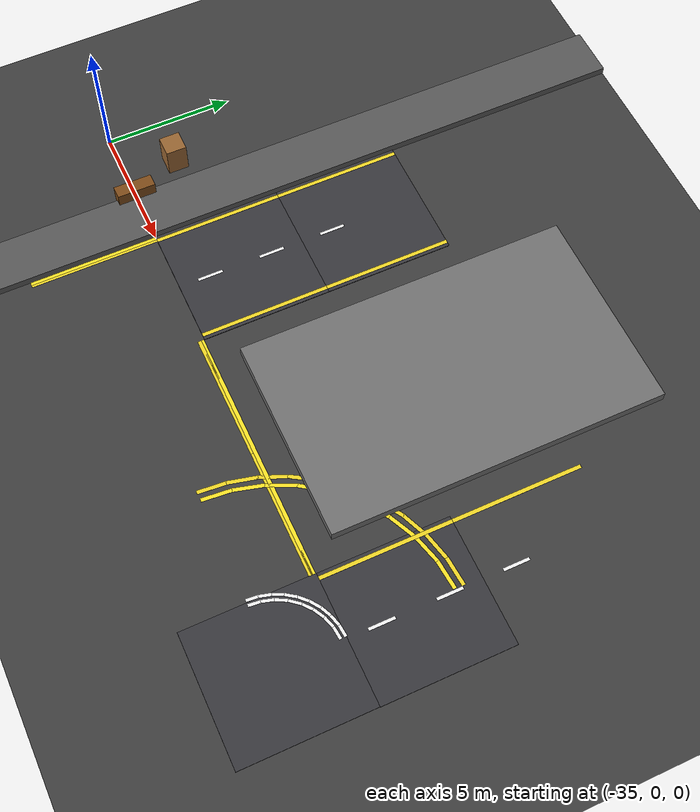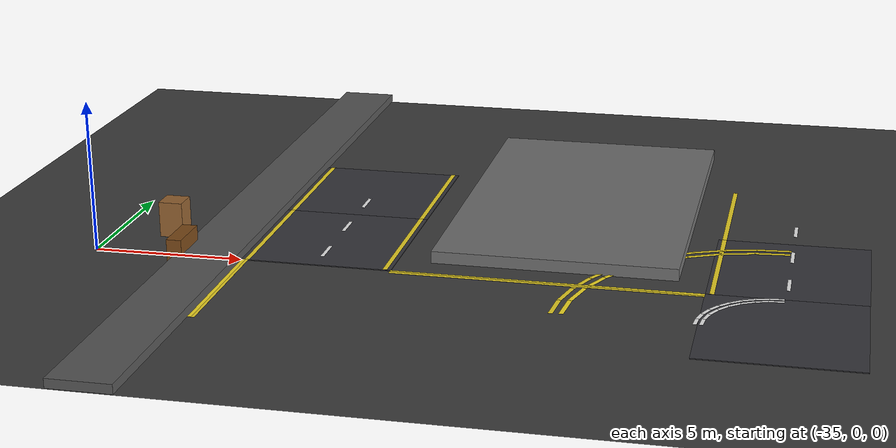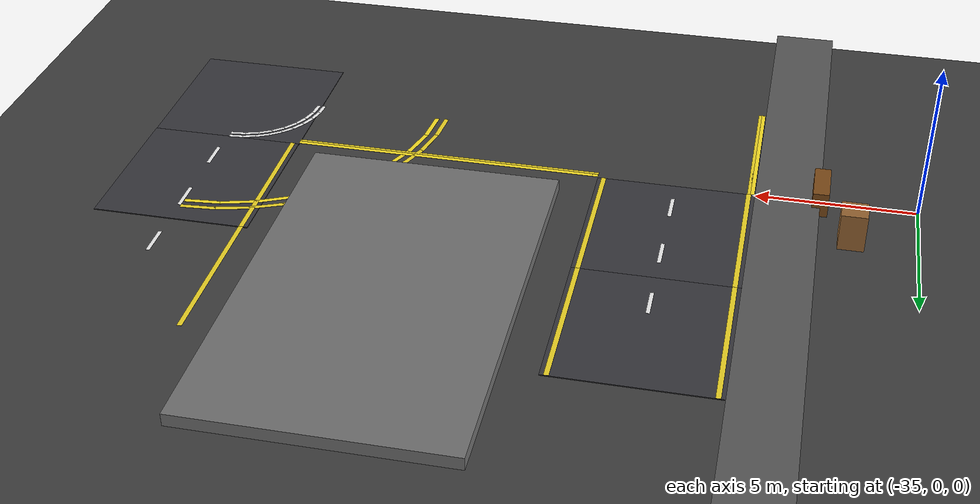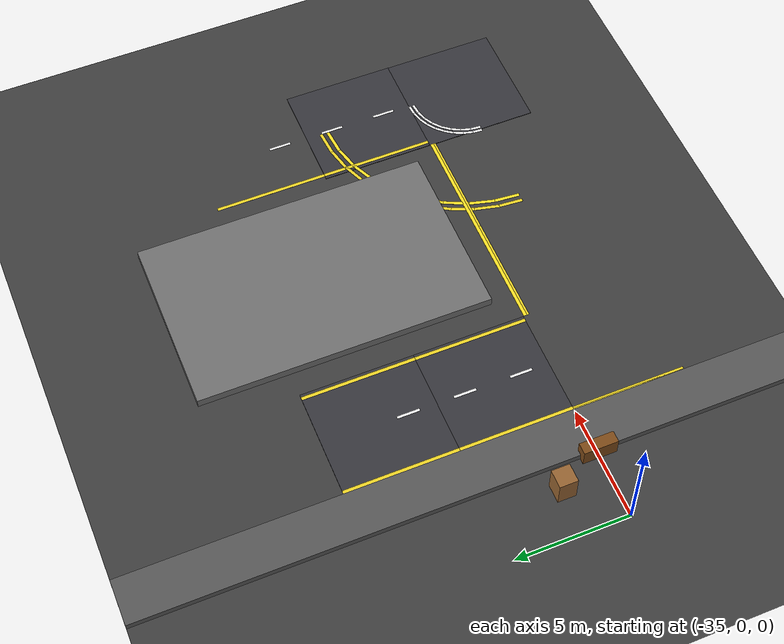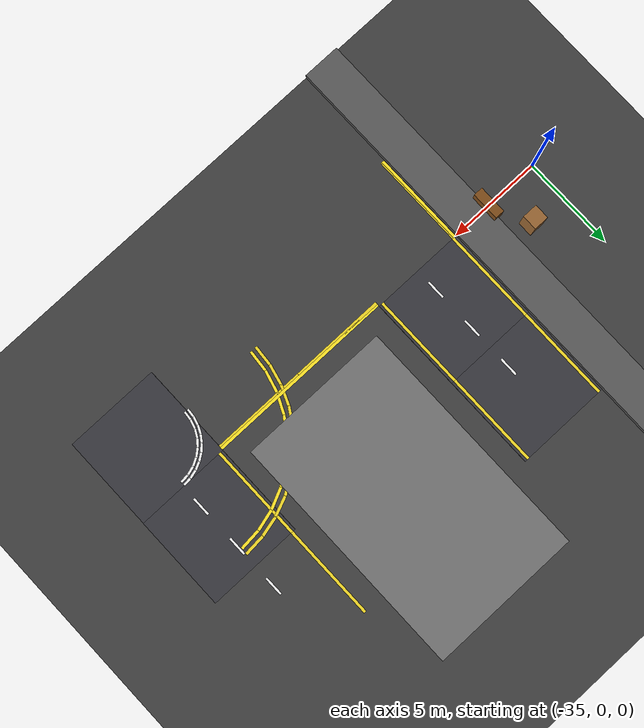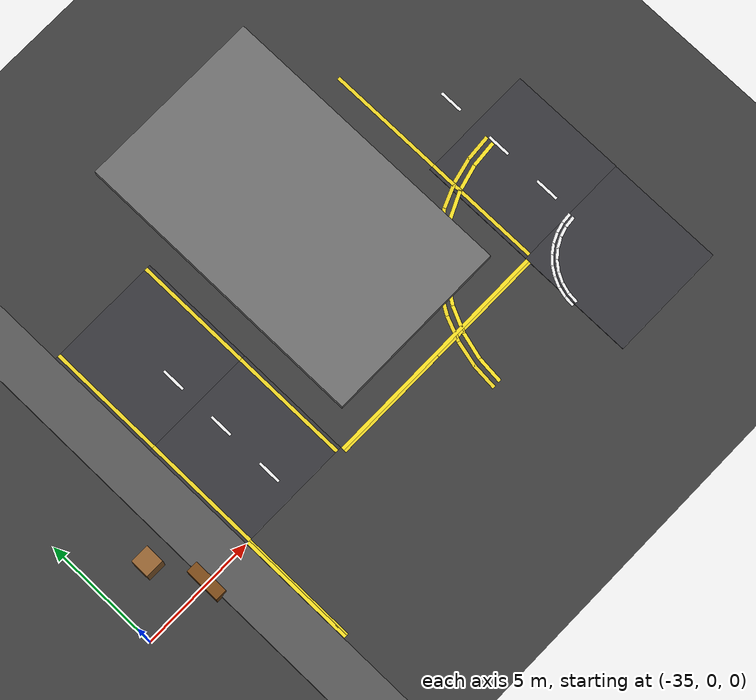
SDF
<sdf version="1.7">
 <world name="compact_city">
  <model name="ground_plane">
   <static>1</static>
   <pose>0 0 0.01 0 -0 0</pose>
   <link name="link">
    <collision name="collision">
     <geometry><plane><normal>0 0 1</normal><size>200 200</size></plane></geometry>
    </collision>
    <visual name="visual">
     <geometry><plane><normal>0 0 1</normal><size>200 200</size></plane></geometry>
     <material>
      <ambient>0.2 0.2 0.2 1</ambient>
      <diffuse>0.25 0.25 0.25 1</diffuse>
      <specular>0.1 0.1 0.1 1</specular>
     </material>
    </visual>
   </link>
  </model>
  <model name="road_tile_37">
   <static>1</static>
   <pose>-27.5 7.5 0.015 0 -0 1.5708</pose>
   <link name="link">
    <collision name="collision"><geometry><box><size>5 5 0.03</size></box></geometry></collision>
    <visual name="visual">
     <geometry><box><size>5 5 0.03</size></box></geometry>
     <material>
      <ambient>0.18 0.18 0.2 1</ambient>
      <diffuse>0.22 0.22 0.24 1</diffuse>
      <specular>0.1 0.1 0.1 1</specular>
     </material>
    </visual>
   </link>
  </model>
  <model name="road_tile_41">
   <static>1</static>
   <pose>-27.5 2.5 0.015 0 -0 1.5708</pose>
   <link name="link">
    <collision name="collision"><geometry><box><size>5 5 0.03</size></box></geometry></collision>
    <visual name="visual">
     <geometry><box><size>5 5 0.03</size></box></geometry>
     <material>
      <ambient>0.18 0.18 0.2 1</ambient>
      <diffuse>0.22 0.22 0.24 1</diffuse>
      <specular>0.1 0.1 0.1 1</specular>
     </material>
    </visual>
   </link>
  </model>
  <model name="road_tile_42">
   <static>1</static>
   <pose>-12.5 2.5 0.015 0 -0 1.5708</pose>
   <link name="link">
    <collision name="collision"><geometry><box><size>5 5 0.03</size></box></geometry></collision>
    <visual name="visual">
     <geometry><box><size>5 5 0.03</size></box></geometry>
     <material>
      <ambient>0.18 0.18 0.2 1</ambient>
      <diffuse>0.22 0.22 0.24 1</diffuse>
      <specular>0.1 0.1 0.1 1</specular>
     </material>
    </visual>
   </link>
  </model>
  <model name="sidewalk_west">
   <static>1</static>
   <pose>-31 0 0.15 0 -0 0</pose>
   <link name="link">
    <collision name="collision"><geometry><box><size>2 70 0.3</size></box></geometry></collision>
    <visual name="visual">
     <geometry><box><size>2 70 0.3</size></box></geometry>
     <material>
      <ambient>0.3 0.3 0.3 1</ambient>
      <diffuse>0.35 0.35 0.35 1</diffuse>
      <specular>0.1 0.1 0.1 1</specular>
     </material>
    </visual>
   </link>
  </model>
  <model name="sidewalk_area_mid_left">
   <static>1</static>
   <pose>-19.9112 7.47491 0.2 0 -0 0</pose>
   <link name="link">
    <collision name="collision"><geometry><box><size>8 13 0.4</size></box></geometry></collision>
    <visual name="visual">
     <geometry><box><size>8 13 0.4</size></box></geometry>
     <material>
      <ambient>0.4 0.4 0.4 1</ambient>
      <diffuse>0.45 0.45 0.45 1</diffuse>
      <specular>0.2 0.2 0.2 1</specular>
     </material>
    </visual>
   </link>
  </model>
  <model name="el_137">
   <static>1</static>
   <pose>-29.8 2.5 0.038 0 -0 1.5708</pose>
   <link name="link">
    <visual name="v">
     <geometry><box><size>5 0.15 0.002</size></box></geometry>
     <material><ambient>0.9 0.8 0.1 1</ambient><diffuse>0.95 0.85 0.15 1</diffuse></material>
    </visual>
   </link>
  </model>
  <model name="el_138">
   <static>1</static>
   <pose>-25.2 2.5 0.038 0 -0 1.5708</pose>
   <link name="link">
    <visual name="v">
     <geometry><box><size>5 0.15 0.002</size></box></geometry>
     <material><ambient>0.9 0.8 0.1 1</ambient><diffuse>0.95 0.85 0.15 1</diffuse></material>
    </visual>
   </link>
  </model>
  <model name="el_139">
   <static>1</static>
   <pose>-29.8 7.5 0.038 0 -0 1.5708</pose>
   <link name="link">
    <visual name="v">
     <geometry><box><size>5 0.15 0.002</size></box></geometry>
     <material><ambient>0.9 0.8 0.1 1</ambient><diffuse>0.95 0.85 0.15 1</diffuse></material>
    </visual>
   </link>
  </model>
  <model name="el_140">
   <static>1</static>
   <pose>-25.2 7.5 0.038 0 -0 1.5708</pose>
   <link name="link">
    <visual name="v">
     <geometry><box><size>5 0.15 0.002</size></box></geometry>
     <material><ambient>0.9 0.8 0.1 1</ambient><diffuse>0.95 0.85 0.15 1</diffuse></material>
    </visual>
   </link>
  </model>
  <model name="el_150">
   <static>1</static>
   <pose>-22.5 -0.2 0.038 0 -0 0</pose>
   <link name="link">
    <visual name="v">
     <geometry><box><size>5 0.15 0.002</size></box></geometry>
     <material><ambient>0.9 0.8 0.1 1</ambient><diffuse>0.95 0.85 0.15 1</diffuse></material>
    </visual>
   </link>
  </model>
  <model name="el_158">
   <static>1</static>
   <pose>-17.5 -0.2 0.038 0 -0 0</pose>
   <link name="link">
    <visual name="v">
     <geometry><box><size>5 0.15 0.002</size></box></geometry>
     <material><ambient>0.9 0.8 0.1 1</ambient><diffuse>0.95 0.85 0.15 1</diffuse></material>
    </visual>
   </link>
  </model>
  <model name="el_169">
   <static>1</static>
   <pose>-14.8 2.5 0.038 0 -0 1.5708</pose>
   <link name="link">
    <visual name="v">
     <geometry><box><size>5 0.15 0.002</size></box></geometry>
     <material><ambient>0.9 0.8 0.1 1</ambient><diffuse>0.95 0.85 0.15 1</diffuse></material>
    </visual>
   </link>
  </model>
  <model name="el_171">
   <static>1</static>
   <pose>-14.8 7.5 0.038 0 -0 1.5708</pose>
   <link name="link">
    <visual name="v">
     <geometry><box><size>5 0.15 0.002</size></box></geometry>
     <material><ambient>0.9 0.8 0.1 1</ambient><diffuse>0.95 0.85 0.15 1</diffuse></material>
    </visual>
   </link>
  </model>
  <model name="ld_7">
   <static>1</static>
   <pose>-27.5000 1.2500 0.038 0 -0 1.5708</pose>
   <link name="link">
    <visual name="v">
     <geometry><box><size>1 0.12 0.002</size></box></geometry>
     <material><ambient>1 1 1 1</ambient><diffuse>0.95 0.95 0.95 1</diffuse></material>
    </visual>
   </link>
  </model>
  <model name="ld_8">
   <static>1</static>
   <pose>-27.5000 3.7500 0.038 0 -0 1.5708</pose>
   <link name="link">
    <visual name="v">
     <geometry><box><size>1 0.12 0.002</size></box></geometry>
     <material><ambient>1 1 1 1</ambient><diffuse>0.95 0.95 0.95 1</diffuse></material>
    </visual>
   </link>
  </model>
  <model name="ld_9">
   <static>1</static>
   <pose>-27.5000 6.2500 0.038 0 -0 1.5708</pose>
   <link name="link">
    <visual name="v">
     <geometry><box><size>1 0.12 0.002</size></box></geometry>
     <material><ambient>1 1 1 1</ambient><diffuse>0.95 0.95 0.95 1</diffuse></material>
    </visual>
   </link>
  </model>
  <model name="ld_23">
   <static>1</static>
   <pose>-12.5000 1.2500 0.038 0 -0 1.5708</pose>
   <link name="link">
    <visual name="v">
     <geometry><box><size>1 0.12 0.002</size></box></geometry>
     <material><ambient>1 1 1 1</ambient><diffuse>0.95 0.95 0.95 1</diffuse></material>
    </visual>
   </link>
  </model>
  <model name="ld_24">
   <static>1</static>
   <pose>-12.5000 3.7500 0.038 0 -0 1.5708</pose>
   <link name="link">
    <visual name="v">
     <geometry><box><size>1 0.12 0.002</size></box></geometry>
     <material><ambient>1 1 1 1</ambient><diffuse>0.95 0.95 0.95 1</diffuse></material>
    </visual>
   </link>
  </model>
  <model name="ld_25">
   <static>1</static>
   <pose>-12.5000 6.2500 0.038 0 -0 1.5708</pose>
   <link name="link">
    <visual name="v">
     <geometry><box><size>1 0.12 0.002</size></box></geometry>
     <material><ambient>1 1 1 1</ambient><diffuse>0.95 0.95 0.95 1</diffuse></material>
    </visual>
   </link>
  </model>
  <model name="ie_268">
   <static>1</static>
   <pose>-29.8 -2.5 0.038 0 -0 1.5708</pose>
   <link name="link">
    <visual name="v">
     <geometry><box><size>5 0.1 0.002</size></box></geometry>
     <material><ambient>0.9 0.8 0.1 1</ambient><diffuse>0.95 0.85 0.15 1</diffuse></material>
    </visual>
   </link>
  </model>
  <model name="rr_650">
   <static>1</static>
   <pose>-12.8154 -0.2311 0.038 0 0 -3.04338</pose>
   <link name="link">
    <visual name="v">
     <geometry><box><size>0.486949 0.12 0.002</size></box></geometry>
     <material><ambient>1 1 1 1</ambient><diffuse>0.95 0.95 0.95 1</diffuse></material>
    </visual>
   </link>
  </model>
  <model name="rr_651">
   <static>1</static>
   <pose>-13.2577 -0.319 0.038 0 0 -2.84708</pose>
   <link name="link">
    <visual name="v">
     <geometry><box><size>0.486949 0.12 0.002</size></box></geometry>
     <material><ambient>1 1 1 1</ambient><diffuse>0.95 0.95 0.95 1</diffuse></material>
    </visual>
   </link>
  </model>
  <model name="rr_652">
   <static>1</static>
   <pose>-13.6742 -0.4916 0.038 0 0 -2.65069</pose>
   <link name="link">
    <visual name="v">
     <geometry><box><size>0.486949 0.12 0.002</size></box></geometry>
     <material><ambient>1 1 1 1</ambient><diffuse>0.95 0.95 0.95 1</diffuse></material>
    </visual>
   </link>
  </model>
  <model name="rr_653">
   <static>1</static>
   <pose>-14.0491 -0.7421 0.038 0 0 -2.45438</pose>
   <link name="link">
    <visual name="v">
     <geometry><box><size>0.486949 0.12 0.002</size></box></geometry>
     <material><ambient>1 1 1 1</ambient><diffuse>0.95 0.95 0.95 1</diffuse></material>
    </visual>
   </link>
  </model>
  <model name="rr_654">
   <static>1</static>
   <pose>-14.3679 -1.0609 0.038 0 0 -2.25799</pose>
   <link name="link">
    <visual name="v">
     <geometry><box><size>0.486949 0.12 0.002</size></box></geometry>
     <material><ambient>1 1 1 1</ambient><diffuse>0.95 0.95 0.95 1</diffuse></material>
    </visual>
   </link>
  </model>
  <model name="rr_655">
   <static>1</static>
   <pose>-14.6184 -1.4358 0.038 0 0 -2.06169</pose>
   <link name="link">
    <visual name="v">
     <geometry><box><size>0.486949 0.12 0.002</size></box></geometry>
     <material><ambient>1 1 1 1</ambient><diffuse>0.95 0.95 0.95 1</diffuse></material>
    </visual>
   </link>
  </model>
  <model name="rr_656">
   <static>1</static>
   <pose>-14.791 -1.8523 0.038 0 0 -1.86529</pose>
   <link name="link">
    <visual name="v">
     <geometry><box><size>0.486949 0.12 0.002</size></box></geometry>
     <material><ambient>1 1 1 1</ambient><diffuse>0.95 0.95 0.95 1</diffuse></material>
    </visual>
   </link>
  </model>
  <model name="rr_657">
   <static>1</static>
   <pose>-14.8789 -2.2946 0.038 0 0 -1.66898</pose>
   <link name="link">
    <visual name="v">
     <geometry><box><size>0.486949 0.12 0.002</size></box></geometry>
     <material><ambient>1 1 1 1</ambient><diffuse>0.95 0.95 0.95 1</diffuse></material>
    </visual>
   </link>
  </model>
  <model name="ro_684">
   <static>1</static>
   <pose>-13.1235 4.259 0.038 0 0 -3.06309</pose>
   <link name="link">
    <visual name="v">
     <geometry><box><size>1.1204 0.15 0.002</size></box></geometry>
     <material><ambient>0.9 0.8 0.1 1</ambient><diffuse>0.95 0.85 0.15 1</diffuse></material>
    </visual>
   </link>
  </model>
  <model name="ro_685">
   <static>1</static>
   <pose>-14.1774 4.0921 0.038 0 0 -2.90598</pose>
   <link name="link">
    <visual name="v">
     <geometry><box><size>1.1204 0.15 0.002</size></box></geometry>
     <material><ambient>0.9 0.8 0.1 1</ambient><diffuse>0.95 0.85 0.15 1</diffuse></material>
    </visual>
   </link>
  </model>
  <model name="ro_686">
   <static>1</static>
   <pose>-15.1922 3.7624 0.038 0 0 -2.74889</pose>
   <link name="link">
    <visual name="v">
     <geometry><box><size>1.1204 0.15 0.002</size></box></geometry>
     <material><ambient>0.9 0.8 0.1 1</ambient><diffuse>0.95 0.85 0.15 1</diffuse></material>
    </visual>
   </link>
  </model>
  <model name="ro_687">
   <static>1</static>
   <pose>-16.143 3.278 0.038 0 0 -2.59178</pose>
   <link name="link">
    <visual name="v">
     <geometry><box><size>1.1204 0.15 0.002</size></box></geometry>
     <material><ambient>0.9 0.8 0.1 1</ambient><diffuse>0.95 0.85 0.15 1</diffuse></material>
    </visual>
   </link>
  </model>
  <model name="ro_688">
   <static>1</static>
   <pose>-17.0062 2.6508 0.038 0 0 -2.43468</pose>
   <link name="link">
    <visual name="v">
     <geometry><box><size>1.1204 0.15 0.002</size></box></geometry>
     <material><ambient>0.9 0.8 0.1 1</ambient><diffuse>0.95 0.85 0.15 1</diffuse></material>
    </visual>
   </link>
  </model>
  <model name="ro_689">
   <static>1</static>
   <pose>-17.7608 1.8962 0.038 0 0 -2.27768</pose>
   <link name="link">
    <visual name="v">
     <geometry><box><size>1.1204 0.15 0.002</size></box></geometry>
     <material><ambient>0.9 0.8 0.1 1</ambient><diffuse>0.95 0.85 0.15 1</diffuse></material>
    </visual>
   </link>
  </model>
  <model name="ro_690">
   <static>1</static>
   <pose>-18.388 1.033 0.038 0 0 -2.12059</pose>
   <link name="link">
    <visual name="v">
     <geometry><box><size>1.1204 0.15 0.002</size></box></geometry>
     <material><ambient>0.9 0.8 0.1 1</ambient><diffuse>0.95 0.85 0.15 1</diffuse></material>
    </visual>
   </link>
  </model>
  <model name="ro_691">
   <static>1</static>
   <pose>-18.8724 0.0822 0.038 0 0 -1.96348</pose>
   <link name="link">
    <visual name="v">
     <geometry><box><size>1.1204 0.15 0.002</size></box></geometry>
     <material><ambient>0.9 0.8 0.1 1</ambient><diffuse>0.95 0.85 0.15 1</diffuse></material>
    </visual>
   </link>
  </model>
  <model name="ro_692">
   <static>1</static>
   <pose>-19.2021 -0.9326 0.038 0 0 -1.80638</pose>
   <link name="link">
    <visual name="v">
     <geometry><box><size>1.1204 0.15 0.002</size></box></geometry>
     <material><ambient>0.9 0.8 0.1 1</ambient><diffuse>0.95 0.85 0.15 1</diffuse></material>
    </visual>
   </link>
  </model>
  <model name="ro_693">
   <static>1</static>
   <pose>-19.369 -1.9865 0.038 0 0 -1.64939</pose>
   <link name="link">
    <visual name="v">
     <geometry><box><size>1.1204 0.15 0.002</size></box></geometry>
     <material><ambient>0.9 0.8 0.1 1</ambient><diffuse>0.95 0.85 0.15 1</diffuse></material>
    </visual>
   </link>
  </model>
  <model name="bench_6">
   <static>1</static>
   <pose>-32 0 0.4 0 -0 1.57</pose>
   <link name="link">
    <collision name="collision"><geometry><box><size>1.5 0.5 0.8</size></box></geometry></collision>
    <visual name="visual">
     <geometry><box><size>1.5 0.5 0.8</size></box></geometry>
     <material><ambient>0.5 0.3 0.1 1</ambient><diffuse>0.5 0.3 0.1 1</diffuse></material>
    </visual>
   </link>
  </model>
  <model name="box_3">
   <static>1</static>
   <pose>-33 2 0.6 0 -0 0</pose>
   <link name="link">
    <collision name="collision"><geometry><box><size>0.8 0.8 1.2</size></box></geometry></collision>
    <visual name="visual">
     <geometry><box><size>0.8 0.8 1.2</size></box></geometry>
     <material><ambient>0.6 0.4 0.2 1</ambient><diffuse>0.6 0.4 0.2 1</diffuse></material>
    </visual>
   </link>
  </model>
  <model name="edge_h_14">
   <static>1</static>
   <pose>-20 -0.1 0.038 0 -0 0</pose>
   <link name="link">
    <visual name="visual">
     <geometry><box><size>10 0.15 0.002</size></box></geometry>
     <material><ambient>0.95 0.85 0.1 1</ambient><diffuse>1 0.9 0.15 1</diffuse></material>
    </visual>
   </link>
  </model>
  <model name="tedge_494">
   <static>1</static>
   <pose>-29.9 -2.5 0.038 0 -0 1.5708</pose>
   <link name="link">
    <visual name="visual">
     <geometry><box><size>5 0.15 0.002</size></box></geometry>
     <material><ambient>0.95 0.85 0.1 1</ambient><diffuse>1 0.9 0.15 1</diffuse></material>
    </visual>
   </link>
  </model>
  <model name="ra_ring_510">
   <static>1</static>
   <pose>-12.8071 -0.039 0.038 0 0 -3.0543</pose>
   <link name="link">
    <visual name="visual">
     <geometry><box><size>0.455779 0.12 0.002</size></box></geometry>
     <material><ambient>1 1 1 1</ambient><diffuse>0.95 0.95 0.95 1</diffuse></material>
    </visual>
   </link>
  </model>
  <model name="ra_ring_511">
   <static>1</static>
   <pose>-13.2346 -0.1144 0.038 0 0 -2.8798</pose>
   <link name="link">
    <visual name="visual">
     <geometry><box><size>0.455779 0.12 0.002</size></box></geometry>
     <material><ambient>1 1 1 1</ambient><diffuse>0.95 0.95 0.95 1</diffuse></material>
    </visual>
   </link>
  </model>
  <model name="ra_ring_512">
   <static>1</static>
   <pose>-13.6425 -0.2629 0.038 0 0 -2.7053</pose>
   <link name="link">
    <visual name="visual">
     <geometry><box><size>0.455779 0.12 0.002</size></box></geometry>
     <material><ambient>1 1 1 1</ambient><diffuse>0.95 0.95 0.95 1</diffuse></material>
    </visual>
   </link>
  </model>
  <model name="ra_ring_513">
   <static>1</static>
   <pose>-14.0185 -0.4799 0.038 0 0 -2.5307</pose>
   <link name="link">
    <visual name="visual">
     <geometry><box><size>0.455779 0.12 0.002</size></box></geometry>
     <material><ambient>1 1 1 1</ambient><diffuse>0.95 0.95 0.95 1</diffuse></material>
    </visual>
   </link>
  </model>
  <model name="ra_ring_514">
   <static>1</static>
   <pose>-14.351 -0.759 0.038 0 0 -2.3562</pose>
   <link name="link">
    <visual name="visual">
     <geometry><box><size>0.455779 0.12 0.002</size></box></geometry>
     <material><ambient>1 1 1 1</ambient><diffuse>0.95 0.95 0.95 1</diffuse></material>
    </visual>
   </link>
  </model>
  <model name="ra_ring_515">
   <static>1</static>
   <pose>-14.6301 -1.0915 0.038 0 0 -2.1817</pose>
   <link name="link">
    <visual name="visual">
     <geometry><box><size>0.455779 0.12 0.002</size></box></geometry>
     <material><ambient>1 1 1 1</ambient><diffuse>0.95 0.95 0.95 1</diffuse></material>
    </visual>
   </link>
  </model>
  <model name="ra_ring_516">
   <static>1</static>
   <pose>-14.8471 -1.4675 0.038 0 0 -2.0071</pose>
   <link name="link">
    <visual name="visual">
     <geometry><box><size>0.455779 0.12 0.002</size></box></geometry>
     <material><ambient>1 1 1 1</ambient><diffuse>0.95 0.95 0.95 1</diffuse></material>
    </visual>
   </link>
  </model>
  <model name="ra_ring_517">
   <static>1</static>
   <pose>-14.9956 -1.8754 0.038 0 0 -1.8326</pose>
   <link name="link">
    <visual name="visual">
     <geometry><box><size>0.455779 0.12 0.002</size></box></geometry>
     <material><ambient>1 1 1 1</ambient><diffuse>0.95 0.95 0.95 1</diffuse></material>
    </visual>
   </link>
  </model>
  <model name="ra_ring_518">
   <static>1</static>
   <pose>-15.071 -2.3029 0.038 0 0 -1.6581</pose>
   <link name="link">
    <visual name="visual">
     <geometry><box><size>0.455779 0.12 0.002</size></box></geometry>
     <material><ambient>1 1 1 1</ambient><diffuse>0.95 0.95 0.95 1</diffuse></material>
    </visual>
   </link>
  </model>
  <model name="ra_outer_546">
   <static>1</static>
   <pose>-13.1544 3.9306 0.038 0 0 -3.0543</pose>
   <link name="link">
    <visual name="visual">
     <geometry><box><size>1.15302 0.15 0.002</size></box></geometry>
     <material><ambient>0.95 0.85 0.1 1</ambient><diffuse>1 0.9 0.15 1</diffuse></material>
    </visual>
   </link>
  </model>
  <model name="ra_outer_547">
   <static>1</static>
   <pose>-14.2659 3.7346 0.038 0 0 -2.8798</pose>
   <link name="link">
    <visual name="visual">
     <geometry><box><size>1.15302 0.15 0.002</size></box></geometry>
     <material><ambient>0.95 0.85 0.1 1</ambient><diffuse>1 0.9 0.15 1</diffuse></material>
    </visual>
   </link>
  </model>
  <model name="ra_outer_548">
   <static>1</static>
   <pose>-15.3266 3.3486 0.038 0 0 -2.7053</pose>
   <link name="link">
    <visual name="visual">
     <geometry><box><size>1.15302 0.15 0.002</size></box></geometry>
     <material><ambient>0.95 0.85 0.1 1</ambient><diffuse>1 0.9 0.15 1</diffuse></material>
    </visual>
   </link>
  </model>
  <model name="ra_outer_549">
   <static>1</static>
   <pose>-16.3041 2.7842 0.038 0 0 -2.5307</pose>
   <link name="link">
    <visual name="visual">
     <geometry><box><size>1.15302 0.15 0.002</size></box></geometry>
     <material><ambient>0.95 0.85 0.1 1</ambient><diffuse>1 0.9 0.15 1</diffuse></material>
    </visual>
   </link>
  </model>
  <model name="ra_outer_550">
   <static>1</static>
   <pose>-17.1687 2.0587 0.038 0 0 -2.3562</pose>
   <link name="link">
    <visual name="visual">
     <geometry><box><size>1.15302 0.15 0.002</size></box></geometry>
     <material><ambient>0.95 0.85 0.1 1</ambient><diffuse>1 0.9 0.15 1</diffuse></material>
    </visual>
   </link>
  </model>
  <model name="ra_outer_551">
   <static>1</static>
   <pose>-17.8942 1.1941 0.038 0 0 -2.1817</pose>
   <link name="link">
    <visual name="visual">
     <geometry><box><size>1.15302 0.15 0.002</size></box></geometry>
     <material><ambient>0.95 0.85 0.1 1</ambient><diffuse>1 0.9 0.15 1</diffuse></material>
    </visual>
   </link>
  </model>
  <model name="ra_outer_552">
   <static>1</static>
   <pose>-18.4586 0.2166 0.038 0 0 -2.0071</pose>
   <link name="link">
    <visual name="visual">
     <geometry><box><size>1.15302 0.15 0.002</size></box></geometry>
     <material><ambient>0.95 0.85 0.1 1</ambient><diffuse>1 0.9 0.15 1</diffuse></material>
    </visual>
   </link>
  </model>
  <model name="ra_outer_553">
   <static>1</static>
   <pose>-18.8446 -0.8441 0.038 0 0 -1.8326</pose>
   <link name="link">
    <visual name="visual">
     <geometry><box><size>1.15302 0.15 0.002</size></box></geometry>
     <material><ambient>0.95 0.85 0.1 1</ambient><diffuse>1 0.9 0.15 1</diffuse></material>
    </visual>
   </link>
  </model>
  <model name="ra_outer_554">
   <static>1</static>
   <pose>-19.0406 -1.9556 0.038 0 0 -1.6581</pose>
   <link name="link">
    <visual name="visual">
     <geometry><box><size>1.15302 0.15 0.002</size></box></geometry>
     <material><ambient>0.95 0.85 0.1 1</ambient><diffuse>1 0.9 0.15 1</diffuse></material>
    </visual>
   </link>
  </model>
  <model name="road_tile_47_clone">
   <static>1</static>
   <pose>-12.512 -2.49714 0.015 0 -0 0</pose>
   <link name="link">
    <collision name="collision"><geometry><box><size>5 5 0.03</size></box></geometry></collision>
    <visual name="visual">
     <geometry><box><size>5 5 0.03</size></box></geometry>
     <material>
      <ambient>0.18 0.18 0.2 1</ambient>
      <diffuse>0.22 0.22 0.24 1</diffuse>
      <specular>0.1 0.1 0.1 1</specular>
     </material>
    </visual>
   </link>
  </model>
 </world>
</sdf>
